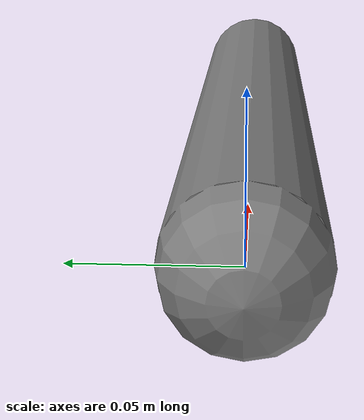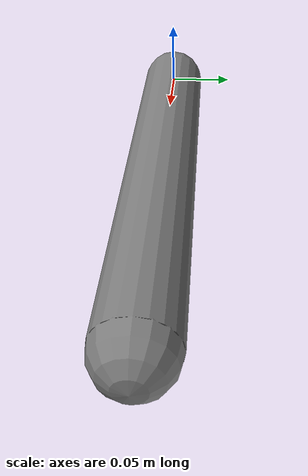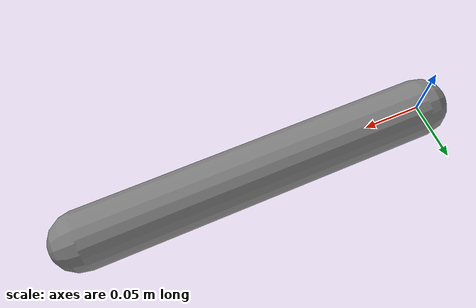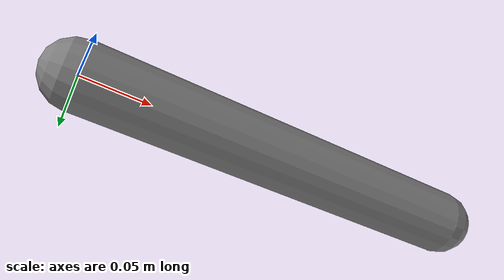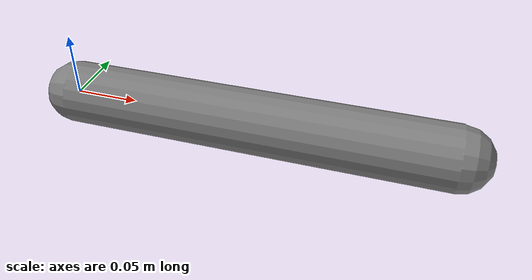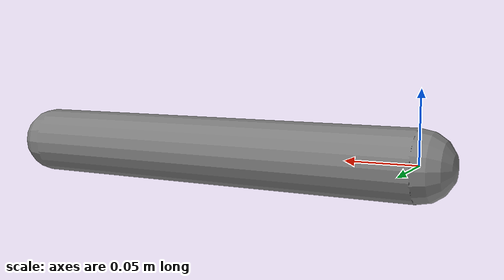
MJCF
<mujoco model="single_joint_validation">
  <option timestep="0.002"/>

  <worldbody>
    <body name="arm_link">
      <joint name="joint1" type="hinge" axis="0 0 1" damping="1"/>
      <geom type="capsule" fromto="0 0 0 0.3 0 0" size="0.025" mass="1"/>
    </body>
  </worldbody>

  <actuator>
    <position name="joint1_servo" joint="joint1" kp="30" kv="3"/>
  </actuator>
</mujoco>
